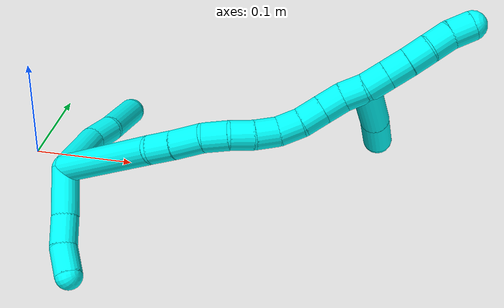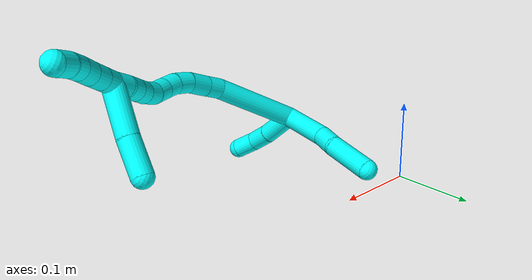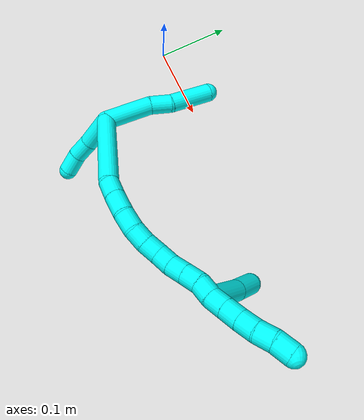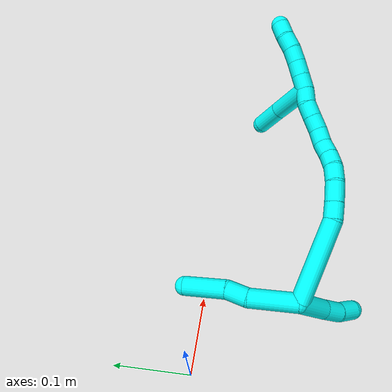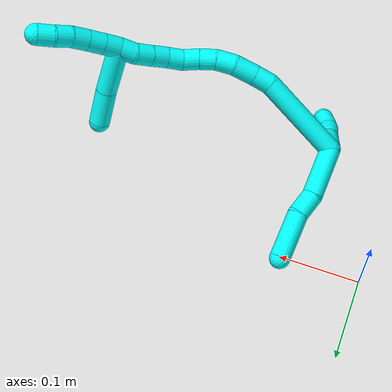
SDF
<sdf version="1.7">
 <world name="default">
  <model name="3">
   <static>0</static>
   <link name="3">
    <collision name="collision-cylinder-e_1_2_8">
     <pose>0.002543 0.031034 -0.006489 -1.77693 0.080024 -0.09846</pose>
     <geometry><cylinder><radius>0.0125</radius><length>0.063613</length></cylinder></geometry>
     <surface>
      <friction><ode><mu>1.16</mu><mu2>1.16</mu2><slip1>0</slip1><slip2>0</slip2></ode></friction>
      <contact><ode><kp>1e+06</kp><kd>1</kd><max_vel>0</max_vel><min_depth>0.001</min_depth></ode></contact>
     </surface>
    </collision>
    <visual name="visual-cylinder-e_1_2_8">
     <pose>0.002543 0.031034 -0.006489 -1.77693 0.080024 -0.09846</pose>
     <geometry><cylinder><radius>0.0125</radius><length>0.063613</length></cylinder></geometry>
     <material><ambient>0.003922 1 0.996078 1</ambient></material>
    </visual>
    <collision name="collision-cylinder-e_2_8_9">
     <pose>0.007805 0.076245 -0.01232 -1.52442 0.189363 -0.180826</pose>
     <geometry><cylinder><radius>0.0125</radius><length>0.028902</length></cylinder></geometry>
     <surface>
      <friction><ode><mu>1.16</mu><mu2>1.16</mu2><slip1>0</slip1><slip2>0</slip2></ode></friction>
      <contact><ode><kp>1e+06</kp><kd>1</kd><max_vel>0</max_vel><min_depth>0.001</min_depth></ode></contact>
     </surface>
    </collision>
    <visual name="visual-cylinder-e_2_8_9">
     <pose>0.007805 0.076245 -0.01232 -1.52442 0.189363 -0.180826</pose>
     <geometry><cylinder><radius>0.0125</radius><length>0.028902</length></cylinder></geometry>
     <material><ambient>0.003922 1 0.996078 1</ambient></material>
    </visual>
    <collision name="collision-cylinder-e_3_9_6">
     <pose>0.01495 0.118082 -0.018102 -1.79954 0.154544 -0.194433</pose>
     <geometry><cylinder><radius>0.0125</radius><length>0.057485</length></cylinder></geometry>
     <surface>
      <friction><ode><mu>1.16</mu><mu2>1.16</mu2><slip1>0</slip1><slip2>0</slip2></ode></friction>
      <contact><ode><kp>1e+06</kp><kd>1</kd><max_vel>0</max_vel><min_depth>0.001</min_depth></ode></contact>
     </surface>
    </collision>
    <visual name="visual-cylinder-e_3_9_6">
     <pose>0.01495 0.118082 -0.018102 -1.79954 0.154544 -0.194433</pose>
     <geometry><cylinder><radius>0.0125</radius><length>0.057485</length></cylinder></geometry>
     <material><ambient>0.003922 1 0.996078 1</ambient></material>
    </visual>
    <collision name="collision-cylinder-e_1_2_10">
     <pose>0.015713 -0.015727 -0.00212 1.70477 0.780451 0.879503</pose>
     <geometry><cylinder><radius>0.0125</radius><length>0.044665</length></cylinder></geometry>
     <surface>
      <friction><ode><mu>1.16</mu><mu2>1.16</mu2><slip1>0</slip1><slip2>0</slip2></ode></friction>
      <contact><ode><kp>1e+06</kp><kd>1</kd><max_vel>0</max_vel><min_depth>0.001</min_depth></ode></contact>
     </surface>
    </collision>
    <visual name="visual-cylinder-e_1_2_10">
     <pose>0.015713 -0.015727 -0.00212 1.70477 0.780451 0.879503</pose>
     <geometry><cylinder><radius>0.0125</radius><length>0.044665</length></cylinder></geometry>
     <material><ambient>0.003922 1 0.996078 1</ambient></material>
    </visual>
    <collision name="collision-cylinder-e_2_10_11">
     <pose>0.040165 -0.042301 -0.004772 1.61986 0.677602 0.708963</pose>
     <geometry><cylinder><radius>0.0125</radius><length>0.02788</length></cylinder></geometry>
     <surface>
      <friction><ode><mu>1.16</mu><mu2>1.16</mu2><slip1>0</slip1><slip2>0</slip2></ode></friction>
      <contact><ode><kp>1e+06</kp><kd>1</kd><max_vel>0</max_vel><min_depth>0.001</min_depth></ode></contact>
     </surface>
    </collision>
    <visual name="visual-cylinder-e_2_10_11">
     <pose>0.040165 -0.042301 -0.004772 1.61986 0.677602 0.708963</pose>
     <geometry><cylinder><radius>0.0125</radius><length>0.02788</length></cylinder></geometry>
     <material><ambient>0.003922 1 0.996078 1</ambient></material>
    </visual>
    <collision name="collision-cylinder-e_3_11_5">
     <pose>0.05831 -0.062818 -0.002759 1.31335 0.754825 0.59309</pose>
     <geometry><cylinder><radius>0.0125</radius><length>0.027455</length></cylinder></geometry>
     <surface>
      <friction><ode><mu>1.16</mu><mu2>1.16</mu2><slip1>0</slip1><slip2>0</slip2></ode></friction>
      <contact><ode><kp>1e+06</kp><kd>1</kd><max_vel>0</max_vel><min_depth>0.001</min_depth></ode></contact>
     </surface>
    </collision>
    <visual name="visual-cylinder-e_3_11_5">
     <pose>0.05831 -0.062818 -0.002759 1.31335 0.754825 0.59309</pose>
     <geometry><cylinder><radius>0.0125</radius><length>0.027455</length></cylinder></geometry>
     <material><ambient>0.003922 1 0.996078 1</ambient></material>
    </visual>
    <collision name="collision-cylinder-e_1_2_12">
     <pose>0.003966 -0.006749 0.053695 0.125033 0.073156 0.004581</pose>
     <geometry><cylinder><radius>0.0125</radius><length>0.108525</length></cylinder></geometry>
     <surface>
      <friction><ode><mu>1.16</mu><mu2>1.16</mu2><slip1>0</slip1><slip2>0</slip2></ode></friction>
      <contact><ode><kp>1e+06</kp><kd>1</kd><max_vel>0</max_vel><min_depth>0.001</min_depth></ode></contact>
     </surface>
    </collision>
    <visual name="visual-cylinder-e_1_2_12">
     <pose>0.003966 -0.006749 0.053695 0.125033 0.073156 0.004581</pose>
     <geometry><cylinder><radius>0.0125</radius><length>0.108525</length></cylinder></geometry>
     <material><ambient>0.003922 1 0.996078 1</ambient></material>
    </visual>
    <collision name="collision-cylinder-e_2_12_13">
     <pose>0.010317 -0.011872 0.118043 -0.151411 0.217757 -0.016582</pose>
     <geometry><cylinder><radius>0.0125</radius><length>0.022075</length></cylinder></geometry>
     <surface>
      <friction><ode><mu>1.16</mu><mu2>1.16</mu2><slip1>0</slip1><slip2>0</slip2></ode></friction>
      <contact><ode><kp>1e+06</kp><kd>1</kd><max_vel>0</max_vel><min_depth>0.001</min_depth></ode></contact>
     </surface>
    </collision>
    <visual name="visual-cylinder-e_2_12_13">
     <pose>0.010317 -0.011872 0.118043 -0.151411 0.217757 -0.016582</pose>
     <geometry><cylinder><radius>0.0125</radius><length>0.022075</length></cylinder></geometry>
     <material><ambient>0.003922 1 0.996078 1</ambient></material>
    </visual>
    <collision name="collision-cylinder-e_3_13_14">
     <pose>0.015345 -0.007554 0.141533 -0.206769 0.198874 -0.020702</pose>
     <geometry><cylinder><radius>0.0125</radius><length>0.026758</length></cylinder></geometry>
     <surface>
      <friction><ode><mu>1.16</mu><mu2>1.16</mu2><slip1>0</slip1><slip2>0</slip2></ode></friction>
      <contact><ode><kp>1e+06</kp><kd>1</kd><max_vel>0</max_vel><min_depth>0.001</min_depth></ode></contact>
     </surface>
    </collision>
    <visual name="visual-cylinder-e_3_13_14">
     <pose>0.015345 -0.007554 0.141533 -0.206769 0.198874 -0.020702</pose>
     <geometry><cylinder><radius>0.0125</radius><length>0.026758</length></cylinder></geometry>
     <material><ambient>0.003922 1 0.996078 1</ambient></material>
    </visual>
    <collision name="collision-cylinder-e_4_14_15">
     <pose>0.022299 -0.001648 0.16397 -0.322957 0.402525 -0.066445</pose>
     <geometry><cylinder><radius>0.0125</radius><length>0.022008</length></cylinder></geometry>
     <surface>
      <friction><ode><mu>1.16</mu><mu2>1.16</mu2><slip1>0</slip1><slip2>0</slip2></ode></friction>
      <contact><ode><kp>1e+06</kp><kd>1</kd><max_vel>0</max_vel><min_depth>0.001</min_depth></ode></contact>
     </surface>
    </collision>
    <visual name="visual-cylinder-e_4_14_15">
     <pose>0.022299 -0.001648 0.16397 -0.322957 0.402525 -0.066445</pose>
     <geometry><cylinder><radius>0.0125</radius><length>0.022008</length></cylinder></geometry>
     <material><ambient>0.003922 1 0.996078 1</ambient></material>
    </visual>
    <collision name="collision-cylinder-e_5_15_16">
     <pose>0.031889 0.005973 0.180858 -0.544043 0.554982 -0.158571</pose>
     <geometry><cylinder><radius>0.0125</radius><length>0.020041</length></cylinder></geometry>
     <surface>
      <friction><ode><mu>1.16</mu><mu2>1.16</mu2><slip1>0</slip1><slip2>0</slip2></ode></friction>
      <contact><ode><kp>1e+06</kp><kd>1</kd><max_vel>0</max_vel><min_depth>0.001</min_depth></ode></contact>
     </surface>
    </collision>
    <visual name="visual-cylinder-e_5_15_16">
     <pose>0.031889 0.005973 0.180858 -0.544043 0.554982 -0.158571</pose>
     <geometry><cylinder><radius>0.0125</radius><length>0.020041</length></cylinder></geometry>
     <material><ambient>0.003922 1 0.996078 1</ambient></material>
    </visual>
    <collision name="collision-cylinder-e_6_16_17">
     <pose>0.041656 0.016125 0.195191 -0.683867 0.458457 -0.16571</pose>
     <geometry><cylinder><radius>0.0125</radius><length>0.020274</length></cylinder></geometry>
     <surface>
      <friction><ode><mu>1.16</mu><mu2>1.16</mu2><slip1>0</slip1><slip2>0</slip2></ode></friction>
      <contact><ode><kp>1e+06</kp><kd>1</kd><max_vel>0</max_vel><min_depth>0.001</min_depth></ode></contact>
     </surface>
    </collision>
    <visual name="visual-cylinder-e_6_16_17">
     <pose>0.041656 0.016125 0.195191 -0.683867 0.458457 -0.16571</pose>
     <geometry><cylinder><radius>0.0125</radius><length>0.020274</length></cylinder></geometry>
     <material><ambient>0.003922 1 0.996078 1</ambient></material>
    </visual>
    <collision name="collision-cylinder-e_7_17_18">
     <pose>0.047967 0.027041 0.210667 -0.550468 0.182498 -0.05167</pose>
     <geometry><cylinder><radius>0.0125</radius><length>0.020116</length></cylinder></geometry>
     <surface>
      <friction><ode><mu>1.16</mu><mu2>1.16</mu2><slip1>0</slip1><slip2>0</slip2></ode></friction>
      <contact><ode><kp>1e+06</kp><kd>1</kd><max_vel>0</max_vel><min_depth>0.001</min_depth></ode></contact>
     </surface>
    </collision>
    <visual name="visual-cylinder-e_7_17_18">
     <pose>0.047967 0.027041 0.210667 -0.550468 0.182498 -0.05167</pose>
     <geometry><cylinder><radius>0.0125</radius><length>0.020116</length></cylinder></geometry>
     <material><ambient>0.003922 1 0.996078 1</ambient></material>
    </visual>
    <collision name="collision-cylinder-e_8_18_19">
     <pose>0.050032 0.038306 0.227081 -0.651675 0.023779 -0.008035</pose>
     <geometry><cylinder><radius>0.0125</radius><length>0.02009</length></cylinder></geometry>
     <surface>
      <friction><ode><mu>1.16</mu><mu2>1.16</mu2><slip1>0</slip1><slip2>0</slip2></ode></friction>
      <contact><ode><kp>1e+06</kp><kd>1</kd><max_vel>0</max_vel><min_depth>0.001</min_depth></ode></contact>
     </surface>
    </collision>
    <visual name="visual-cylinder-e_8_18_19">
     <pose>0.050032 0.038306 0.227081 -0.651675 0.023779 -0.008035</pose>
     <geometry><cylinder><radius>0.0125</radius><length>0.02009</length></cylinder></geometry>
     <material><ambient>0.003922 1 0.996078 1</ambient></material>
    </visual>
    <collision name="collision-cylinder-e_9_19_20">
     <pose>0.050542 0.050383 0.243139 -0.637974 0.027045 -0.008933</pose>
     <geometry><cylinder><radius>0.0125</radius><length>0.020109</length></cylinder></geometry>
     <surface>
      <friction><ode><mu>1.16</mu><mu2>1.16</mu2><slip1>0</slip1><slip2>0</slip2></ode></friction>
      <contact><ode><kp>1e+06</kp><kd>1</kd><max_vel>0</max_vel><min_depth>0.001</min_depth></ode></contact>
     </surface>
    </collision>
    <visual name="visual-cylinder-e_9_19_20">
     <pose>0.050542 0.050383 0.243139 -0.637974 0.027045 -0.008933</pose>
     <geometry><cylinder><radius>0.0125</radius><length>0.020109</length></cylinder></geometry>
     <material><ambient>0.003922 1 0.996078 1</ambient></material>
    </visual>
    <collision name="collision-cylinder-e_10_20_1">
     <pose>0.052054 0.059905 0.260487 -0.364308 0.124279 -0.02292</pose>
     <geometry><cylinder><radius>0.0125</radius><length>0.020004</length></cylinder></geometry>
     <surface>
      <friction><ode><mu>1.16</mu><mu2>1.16</mu2><slip1>0</slip1><slip2>0</slip2></ode></friction>
      <contact><ode><kp>1e+06</kp><kd>1</kd><max_vel>0</max_vel><min_depth>0.001</min_depth></ode></contact>
     </surface>
    </collision>
    <visual name="visual-cylinder-e_10_20_1">
     <pose>0.052054 0.059905 0.260487 -0.364308 0.124279 -0.02292</pose>
     <geometry><cylinder><radius>0.0125</radius><length>0.020004</length></cylinder></geometry>
     <material><ambient>0.003922 1 0.996078 1</ambient></material>
    </visual>
    <collision name="collision-cylinder-e_1_1_21">
     <pose>0.074102 0.078734 0.256663 -2.27902 0.801848 -1.48873</pose>
     <geometry><cylinder><radius>0.0125</radius><length>0.057909</length></cylinder></geometry>
     <surface>
      <friction><ode><mu>1.16</mu><mu2>1.16</mu2><slip1>0</slip1><slip2>0</slip2></ode></friction>
      <contact><ode><kp>1e+06</kp><kd>1</kd><max_vel>0</max_vel><min_depth>0.001</min_depth></ode></contact>
     </surface>
    </collision>
    <visual name="visual-cylinder-e_1_1_21">
     <pose>0.074102 0.078734 0.256663 -2.27902 0.801848 -1.48873</pose>
     <geometry><cylinder><radius>0.0125</radius><length>0.057909</length></cylinder></geometry>
     <material><ambient>0.003922 1 0.996078 1</ambient></material>
    </visual>
    <collision name="collision-cylinder-e_2_21_4">
     <pose>0.109075 0.105385 0.232924 -2.32362 0.73837 -1.45755</pose>
     <geometry><cylinder><radius>0.0125</radius><length>0.042091</length></cylinder></geometry>
     <surface>
      <friction><ode><mu>1.16</mu><mu2>1.16</mu2><slip1>0</slip1><slip2>0</slip2></ode></friction>
      <contact><ode><kp>1e+06</kp><kd>1</kd><max_vel>0</max_vel><min_depth>0.001</min_depth></ode></contact>
     </surface>
    </collision>
    <visual name="visual-cylinder-e_2_21_4">
     <pose>0.109075 0.105385 0.232924 -2.32362 0.73837 -1.45755</pose>
     <geometry><cylinder><radius>0.0125</radius><length>0.042091</length></cylinder></geometry>
     <material><ambient>0.003922 1 0.996078 1</ambient></material>
    </visual>
    <collision name="collision-cylinder-e_1_1_22">
     <pose>0.053232 0.068626 0.278311 -0.545103 -0.006156 0.001721</pose>
     <geometry><cylinder><radius>0.0125</radius><length>0.02</length></cylinder></geometry>
     <surface>
      <friction><ode><mu>1.16</mu><mu2>1.16</mu2><slip1>0</slip1><slip2>0</slip2></ode></friction>
      <contact><ode><kp>1e+06</kp><kd>1</kd><max_vel>0</max_vel><min_depth>0.001</min_depth></ode></contact>
     </surface>
    </collision>
    <visual name="visual-cylinder-e_1_1_22">
     <pose>0.053232 0.068626 0.278311 -0.545103 -0.006156 0.001721</pose>
     <geometry><cylinder><radius>0.0125</radius><length>0.02</length></cylinder></geometry>
     <material><ambient>0.003922 1 0.996078 1</ambient></material>
    </visual>
    <collision name="collision-cylinder-e_2_22_23">
     <pose>0.053125 0.079007 0.295405 -0.546338 -0.004553 0.001276</pose>
     <geometry><cylinder><radius>0.0125</radius><length>0.02</length></cylinder></geometry>
     <surface>
      <friction><ode><mu>1.16</mu><mu2>1.16</mu2><slip1>0</slip1><slip2>0</slip2></ode></friction>
      <contact><ode><kp>1e+06</kp><kd>1</kd><max_vel>0</max_vel><min_depth>0.001</min_depth></ode></contact>
     </surface>
    </collision>
    <visual name="visual-cylinder-e_2_22_23">
     <pose>0.053125 0.079007 0.295405 -0.546338 -0.004553 0.001276</pose>
     <geometry><cylinder><radius>0.0125</radius><length>0.02</length></cylinder></geometry>
     <material><ambient>0.003922 1 0.996078 1</ambient></material>
    </visual>
    <collision name="collision-cylinder-e_3_23_24">
     <pose>0.052809 0.089732 0.312277 -0.586119 -0.0271 0.008178</pose>
     <geometry><cylinder><radius>0.0125</radius><length>0.02</length></cylinder></geometry>
     <surface>
      <friction><ode><mu>1.16</mu><mu2>1.16</mu2><slip1>0</slip1><slip2>0</slip2></ode></friction>
      <contact><ode><kp>1e+06</kp><kd>1</kd><max_vel>0</max_vel><min_depth>0.001</min_depth></ode></contact>
     </surface>
    </collision>
    <visual name="visual-cylinder-e_3_23_24">
     <pose>0.052809 0.089732 0.312277 -0.586119 -0.0271 0.008178</pose>
     <geometry><cylinder><radius>0.0125</radius><length>0.02</length></cylinder></geometry>
     <material><ambient>0.003922 1 0.996078 1</ambient></material>
    </visual>
    <collision name="collision-cylinder-e_4_24_25">
     <pose>0.052744 0.101975 0.328013 -0.73635 0.020656 -0.007969</pose>
     <geometry><cylinder><radius>0.0125</radius><length>0.02</length></cylinder></geometry>
     <surface>
      <friction><ode><mu>1.16</mu><mu2>1.16</mu2><slip1>0</slip1><slip2>0</slip2></ode></friction>
      <contact><ode><kp>1e+06</kp><kd>1</kd><max_vel>0</max_vel><min_depth>0.001</min_depth></ode></contact>
     </surface>
    </collision>
    <visual name="visual-cylinder-e_4_24_25">
     <pose>0.052744 0.101975 0.328013 -0.73635 0.020656 -0.007969</pose>
     <geometry><cylinder><radius>0.0125</radius><length>0.02</length></cylinder></geometry>
     <material><ambient>0.003922 1 0.996078 1</ambient></material>
    </visual>
    <collision name="collision-cylinder-e_5_25_3">
     <pose>0.054741 0.114429 0.343412 -0.622832 0.179979 -0.058074</pose>
     <geometry><cylinder><radius>0.0125</radius><length>0.02</length></cylinder></geometry>
     <surface>
      <friction><ode><mu>1.16</mu><mu2>1.16</mu2><slip1>0</slip1><slip2>0</slip2></ode></friction>
      <contact><ode><kp>1e+06</kp><kd>1</kd><max_vel>0</max_vel><min_depth>0.001</min_depth></ode></contact>
     </surface>
    </collision>
    <visual name="visual-cylinder-e_5_25_3">
     <pose>0.054741 0.114429 0.343412 -0.622832 0.179979 -0.058074</pose>
     <geometry><cylinder><radius>0.0125</radius><length>0.02</length></cylinder></geometry>
     <material><ambient>0.003922 1 0.996078 1</ambient></material>
    </visual>
    <collision name="collision-sphere-3">
     <pose>0.056531 0.120168 0.351403 0 -0 0</pose>
     <geometry><sphere><radius>0.0125</radius></sphere></geometry>
     <surface>
      <friction><ode><mu>1.16</mu><mu2>1.16</mu2><slip1>0</slip1><slip2>0</slip2></ode></friction>
      <contact><ode><kp>1e+06</kp><kd>1</kd><max_vel>0</max_vel><min_depth>0.001</min_depth></ode></contact>
     </surface>
    </collision>
    <visual name="visual-sphere-3">
     <pose>0.056531 0.120168 0.351403 0 -0 0</pose>
     <geometry><sphere><radius>0.0125</radius></sphere></geometry>
     <material><ambient>0.003922 1 0.996078 1</ambient></material>
    </visual>
    <collision name="collision-sphere-25">
     <pose>0.052951 0.10869 0.335421 0 -0 0</pose>
     <geometry><sphere><radius>0.0125</radius></sphere></geometry>
     <surface>
      <friction><ode><mu>1.16</mu><mu2>1.16</mu2><slip1>0</slip1><slip2>0</slip2></ode></friction>
      <contact><ode><kp>1e+06</kp><kd>1</kd><max_vel>0</max_vel><min_depth>0.001</min_depth></ode></contact>
     </surface>
    </collision>
    <visual name="visual-sphere-25">
     <pose>0.052951 0.10869 0.335421 0 -0 0</pose>
     <geometry><sphere><radius>0.0125</radius></sphere></geometry>
     <material><ambient>0.003922 1 0.996078 1</ambient></material>
    </visual>
    <collision name="collision-sphere-24">
     <pose>0.052538 0.095261 0.320605 0 -0 0</pose>
     <geometry><sphere><radius>0.0125</radius></sphere></geometry>
     <surface>
      <friction><ode><mu>1.16</mu><mu2>1.16</mu2><slip1>0</slip1><slip2>0</slip2></ode></friction>
      <contact><ode><kp>1e+06</kp><kd>1</kd><max_vel>0</max_vel><min_depth>0.001</min_depth></ode></contact>
     </surface>
    </collision>
    <visual name="visual-sphere-24">
     <pose>0.052538 0.095261 0.320605 0 -0 0</pose>
     <geometry><sphere><radius>0.0125</radius></sphere></geometry>
     <material><ambient>0.003922 1 0.996078 1</ambient></material>
    </visual>
    <collision name="collision-sphere-23">
     <pose>0.05308 0.084202 0.30395 0 -0 0</pose>
     <geometry><sphere><radius>0.0125</radius></sphere></geometry>
     <surface>
      <friction><ode><mu>1.16</mu><mu2>1.16</mu2><slip1>0</slip1><slip2>0</slip2></ode></friction>
      <contact><ode><kp>1e+06</kp><kd>1</kd><max_vel>0</max_vel><min_depth>0.001</min_depth></ode></contact>
     </surface>
    </collision>
    <visual name="visual-sphere-23">
     <pose>0.05308 0.084202 0.30395 0 -0 0</pose>
     <geometry><sphere><radius>0.0125</radius></sphere></geometry>
     <material><ambient>0.003922 1 0.996078 1</ambient></material>
    </visual>
    <collision name="collision-sphere-22">
     <pose>0.053171 0.073811 0.286861 0 -0 0</pose>
     <geometry><sphere><radius>0.0125</radius></sphere></geometry>
     <surface>
      <friction><ode><mu>1.16</mu><mu2>1.16</mu2><slip1>0</slip1><slip2>0</slip2></ode></friction>
      <contact><ode><kp>1e+06</kp><kd>1</kd><max_vel>0</max_vel><min_depth>0.001</min_depth></ode></contact>
     </surface>
    </collision>
    <visual name="visual-sphere-22">
     <pose>0.053171 0.073811 0.286861 0 -0 0</pose>
     <geometry><sphere><radius>0.0125</radius></sphere></geometry>
     <material><ambient>0.003922 1 0.996078 1</ambient></material>
    </visual>
    <collision name="collision-sphere-4">
     <pose>0.123241 0.116743 0.222283 0 -0 0</pose>
     <geometry><sphere><radius>0.0125</radius></sphere></geometry>
     <surface>
      <friction><ode><mu>1.16</mu><mu2>1.16</mu2><slip1>0</slip1><slip2>0</slip2></ode></friction>
      <contact><ode><kp>1e+06</kp><kd>1</kd><max_vel>0</max_vel><min_depth>0.001</min_depth></ode></contact>
     </surface>
    </collision>
    <visual name="visual-sphere-4">
     <pose>0.123241 0.116743 0.222283 0 -0 0</pose>
     <geometry><sphere><radius>0.0125</radius></sphere></geometry>
     <material><ambient>0.003922 1 0.996078 1</ambient></material>
    </visual>
    <collision name="collision-sphere-21">
     <pose>0.09491 0.094026 0.243566 0 -0 0</pose>
     <geometry><sphere><radius>0.0125</radius></sphere></geometry>
     <surface>
      <friction><ode><mu>1.16</mu><mu2>1.16</mu2><slip1>0</slip1><slip2>0</slip2></ode></friction>
      <contact><ode><kp>1e+06</kp><kd>1</kd><max_vel>0</max_vel><min_depth>0.001</min_depth></ode></contact>
     </surface>
    </collision>
    <visual name="visual-sphere-21">
     <pose>0.09491 0.094026 0.243566 0 -0 0</pose>
     <geometry><sphere><radius>0.0125</radius></sphere></geometry>
     <material><ambient>0.003922 1 0.996078 1</ambient></material>
    </visual>
    <collision name="collision-sphere-1">
     <pose>0.053294 0.063441 0.26976 0 -0 0</pose>
     <geometry><sphere><radius>0.0125</radius></sphere></geometry>
     <surface>
      <friction><ode><mu>1.16</mu><mu2>1.16</mu2><slip1>0</slip1><slip2>0</slip2></ode></friction>
      <contact><ode><kp>1e+06</kp><kd>1</kd><max_vel>0</max_vel><min_depth>0.001</min_depth></ode></contact>
     </surface>
    </collision>
    <visual name="visual-sphere-1">
     <pose>0.053294 0.063441 0.26976 0 -0 0</pose>
     <geometry><sphere><radius>0.0125</radius></sphere></geometry>
     <material><ambient>0.003922 1 0.996078 1</ambient></material>
    </visual>
    <collision name="collision-sphere-11">
     <pose>0.048905 -0.053149 -0.005305 0 -0 0</pose>
     <geometry><sphere><radius>0.0125</radius></sphere></geometry>
     <surface>
      <friction><ode><mu>1.16</mu><mu2>1.16</mu2><slip1>0</slip1><slip2>0</slip2></ode></friction>
      <contact><ode><kp>1e+06</kp><kd>1</kd><max_vel>0</max_vel><min_depth>0.001</min_depth></ode></contact>
     </surface>
    </collision>
    <visual name="visual-sphere-11">
     <pose>0.048905 -0.053149 -0.005305 0 -0 0</pose>
     <geometry><sphere><radius>0.0125</radius></sphere></geometry>
     <material><ambient>0.003922 1 0.996078 1</ambient></material>
    </visual>
    <collision name="collision-sphere-10">
     <pose>0.031426 -0.031454 -0.00424 0 -0 0</pose>
     <geometry><sphere><radius>0.0125</radius></sphere></geometry>
     <surface>
      <friction><ode><mu>1.16</mu><mu2>1.16</mu2><slip1>0</slip1><slip2>0</slip2></ode></friction>
      <contact><ode><kp>1e+06</kp><kd>1</kd><max_vel>0</max_vel><min_depth>0.001</min_depth></ode></contact>
     </surface>
    </collision>
    <visual name="visual-sphere-10">
     <pose>0.031426 -0.031454 -0.00424 0 -0 0</pose>
     <geometry><sphere><radius>0.0125</radius></sphere></geometry>
     <material><ambient>0.003922 1 0.996078 1</ambient></material>
    </visual>
    <collision name="collision-sphere-6">
     <pose>0.019374 0.145742 -0.024542 0 -0 0</pose>
     <geometry><sphere><radius>0.0125</radius></sphere></geometry>
     <surface>
      <friction><ode><mu>1.16</mu><mu2>1.16</mu2><slip1>0</slip1><slip2>0</slip2></ode></friction>
      <contact><ode><kp>1e+06</kp><kd>1</kd><max_vel>0</max_vel><min_depth>0.001</min_depth></ode></contact>
     </surface>
    </collision>
    <visual name="visual-sphere-6">
     <pose>0.019374 0.145742 -0.024542 0 -0 0</pose>
     <geometry><sphere><radius>0.0125</radius></sphere></geometry>
     <material><ambient>0.003922 1 0.996078 1</ambient></material>
    </visual>
    <collision name="collision-sphere-9">
     <pose>0.010525 0.090422 -0.011662 0 -0 0</pose>
     <geometry><sphere><radius>0.0125</radius></sphere></geometry>
     <surface>
      <friction><ode><mu>1.16</mu><mu2>1.16</mu2><slip1>0</slip1><slip2>0</slip2></ode></friction>
      <contact><ode><kp>1e+06</kp><kd>1</kd><max_vel>0</max_vel><min_depth>0.001</min_depth></ode></contact>
     </surface>
    </collision>
    <visual name="visual-sphere-9">
     <pose>0.010525 0.090422 -0.011662 0 -0 0</pose>
     <geometry><sphere><radius>0.0125</radius></sphere></geometry>
     <material><ambient>0.003922 1 0.996078 1</ambient></material>
    </visual>
    <collision name="collision-sphere-2">
     <geometry><sphere><radius>0.0125</radius></sphere></geometry>
     <surface>
      <friction><ode><mu>1.16</mu><mu2>1.16</mu2><slip1>0</slip1><slip2>0</slip2></ode></friction>
      <contact><ode><kp>1e+06</kp><kd>1</kd><max_vel>0</max_vel><min_depth>0.001</min_depth></ode></contact>
     </surface>
    </collision>
    <visual name="visual-sphere-2">
     <geometry><sphere><radius>0.0125</radius></sphere></geometry>
     <material><ambient>0.003922 1 0.996078 1</ambient></material>
    </visual>
    <collision name="collision-sphere-19">
     <pose>0.05027 0.044397 0.235065 0 -0 0</pose>
     <geometry><sphere><radius>0.0125</radius></sphere></geometry>
     <surface>
      <friction><ode><mu>1.16</mu><mu2>1.16</mu2><slip1>0</slip1><slip2>0</slip2></ode></friction>
      <contact><ode><kp>1e+06</kp><kd>1</kd><max_vel>0</max_vel><min_depth>0.001</min_depth></ode></contact>
     </surface>
    </collision>
    <visual name="visual-sphere-19">
     <pose>0.05027 0.044397 0.235065 0 -0 0</pose>
     <geometry><sphere><radius>0.0125</radius></sphere></geometry>
     <material><ambient>0.003922 1 0.996078 1</ambient></material>
    </visual>
    <collision name="collision-sphere-8">
     <pose>0.005085 0.062067 -0.012978 0 -0 0</pose>
     <geometry><sphere><radius>0.0125</radius></sphere></geometry>
     <surface>
      <friction><ode><mu>1.16</mu><mu2>1.16</mu2><slip1>0</slip1><slip2>0</slip2></ode></friction>
      <contact><ode><kp>1e+06</kp><kd>1</kd><max_vel>0</max_vel><min_depth>0.001</min_depth></ode></contact>
     </surface>
    </collision>
    <visual name="visual-sphere-8">
     <pose>0.005085 0.062067 -0.012978 0 -0 0</pose>
     <geometry><sphere><radius>0.0125</radius></sphere></geometry>
     <material><ambient>0.003922 1 0.996078 1</ambient></material>
    </visual>
    <collision name="collision-sphere-5">
     <pose>0.067716 -0.072488 -0.000213 0 -0 0</pose>
     <geometry><sphere><radius>0.0125</radius></sphere></geometry>
     <surface>
      <friction><ode><mu>1.16</mu><mu2>1.16</mu2><slip1>0</slip1><slip2>0</slip2></ode></friction>
      <contact><ode><kp>1e+06</kp><kd>1</kd><max_vel>0</max_vel><min_depth>0.001</min_depth></ode></contact>
     </surface>
    </collision>
    <visual name="visual-sphere-5">
     <pose>0.067716 -0.072488 -0.000213 0 -0 0</pose>
     <geometry><sphere><radius>0.0125</radius></sphere></geometry>
     <material><ambient>0.003922 1 0.996078 1</ambient></material>
    </visual>
    <collision name="collision-sphere-12">
     <pose>0.007932 -0.013498 0.107389 0 -0 0</pose>
     <geometry><sphere><radius>0.0125</radius></sphere></geometry>
     <surface>
      <friction><ode><mu>1.16</mu><mu2>1.16</mu2><slip1>0</slip1><slip2>0</slip2></ode></friction>
      <contact><ode><kp>1e+06</kp><kd>1</kd><max_vel>0</max_vel><min_depth>0.001</min_depth></ode></contact>
     </surface>
    </collision>
    <visual name="visual-sphere-12">
     <pose>0.007932 -0.013498 0.107389 0 -0 0</pose>
     <geometry><sphere><radius>0.0125</radius></sphere></geometry>
     <material><ambient>0.003922 1 0.996078 1</ambient></material>
    </visual>
    <collision name="collision-sphere-13">
     <pose>0.012701 -0.010247 0.128697 0 -0 0</pose>
     <geometry><sphere><radius>0.0125</radius></sphere></geometry>
     <surface>
      <friction><ode><mu>1.16</mu><mu2>1.16</mu2><slip1>0</slip1><slip2>0</slip2></ode></friction>
      <contact><ode><kp>1e+06</kp><kd>1</kd><max_vel>0</max_vel><min_depth>0.001</min_depth></ode></contact>
     </surface>
    </collision>
    <visual name="visual-sphere-13">
     <pose>0.012701 -0.010247 0.128697 0 -0 0</pose>
     <geometry><sphere><radius>0.0125</radius></sphere></geometry>
     <material><ambient>0.003922 1 0.996078 1</ambient></material>
    </visual>
    <collision name="collision-sphere-14">
     <pose>0.017988 -0.004861 0.154369 0 -0 0</pose>
     <geometry><sphere><radius>0.0125</radius></sphere></geometry>
     <surface>
      <friction><ode><mu>1.16</mu><mu2>1.16</mu2><slip1>0</slip1><slip2>0</slip2></ode></friction>
      <contact><ode><kp>1e+06</kp><kd>1</kd><max_vel>0</max_vel><min_depth>0.001</min_depth></ode></contact>
     </surface>
    </collision>
    <visual name="visual-sphere-14">
     <pose>0.017988 -0.004861 0.154369 0 -0 0</pose>
     <geometry><sphere><radius>0.0125</radius></sphere></geometry>
     <material><ambient>0.003922 1 0.996078 1</ambient></material>
    </visual>
    <collision name="collision-sphere-15">
     <pose>0.026609 0.001565 0.173571 0 -0 0</pose>
     <geometry><sphere><radius>0.0125</radius></sphere></geometry>
     <surface>
      <friction><ode><mu>1.16</mu><mu2>1.16</mu2><slip1>0</slip1><slip2>0</slip2></ode></friction>
      <contact><ode><kp>1e+06</kp><kd>1</kd><max_vel>0</max_vel><min_depth>0.001</min_depth></ode></contact>
     </surface>
    </collision>
    <visual name="visual-sphere-15">
     <pose>0.026609 0.001565 0.173571 0 -0 0</pose>
     <geometry><sphere><radius>0.0125</radius></sphere></geometry>
     <material><ambient>0.003922 1 0.996078 1</ambient></material>
    </visual>
    <collision name="collision-sphere-16">
     <pose>0.03717 0.010382 0.188145 0 -0 0</pose>
     <geometry><sphere><radius>0.0125</radius></sphere></geometry>
     <surface>
      <friction><ode><mu>1.16</mu><mu2>1.16</mu2><slip1>0</slip1><slip2>0</slip2></ode></friction>
      <contact><ode><kp>1e+06</kp><kd>1</kd><max_vel>0</max_vel><min_depth>0.001</min_depth></ode></contact>
     </surface>
    </collision>
    <visual name="visual-sphere-16">
     <pose>0.03717 0.010382 0.188145 0 -0 0</pose>
     <geometry><sphere><radius>0.0125</radius></sphere></geometry>
     <material><ambient>0.003922 1 0.996078 1</ambient></material>
    </visual>
    <collision name="collision-sphere-17">
     <pose>0.046142 0.021868 0.202237 0 -0 0</pose>
     <geometry><sphere><radius>0.0125</radius></sphere></geometry>
     <surface>
      <friction><ode><mu>1.16</mu><mu2>1.16</mu2><slip1>0</slip1><slip2>0</slip2></ode></friction>
      <contact><ode><kp>1e+06</kp><kd>1</kd><max_vel>0</max_vel><min_depth>0.001</min_depth></ode></contact>
     </surface>
    </collision>
    <visual name="visual-sphere-17">
     <pose>0.046142 0.021868 0.202237 0 -0 0</pose>
     <geometry><sphere><radius>0.0125</radius></sphere></geometry>
     <material><ambient>0.003922 1 0.996078 1</ambient></material>
    </visual>
    <collision name="collision-sphere-18">
     <pose>0.049793 0.032215 0.219097 0 -0 0</pose>
     <geometry><sphere><radius>0.0125</radius></sphere></geometry>
     <surface>
      <friction><ode><mu>1.16</mu><mu2>1.16</mu2><slip1>0</slip1><slip2>0</slip2></ode></friction>
      <contact><ode><kp>1e+06</kp><kd>1</kd><max_vel>0</max_vel><min_depth>0.001</min_depth></ode></contact>
     </surface>
    </collision>
    <visual name="visual-sphere-18">
     <pose>0.049793 0.032215 0.219097 0 -0 0</pose>
     <geometry><sphere><radius>0.0125</radius></sphere></geometry>
     <material><ambient>0.003922 1 0.996078 1</ambient></material>
    </visual>
    <collision name="collision-sphere-20">
     <pose>0.050814 0.056369 0.251213 0 -0 0</pose>
     <geometry><sphere><radius>0.0125</radius></sphere></geometry>
     <surface>
      <friction><ode><mu>1.16</mu><mu2>1.16</mu2><slip1>0</slip1><slip2>0</slip2></ode></friction>
      <contact><ode><kp>1e+06</kp><kd>1</kd><max_vel>0</max_vel><min_depth>0.001</min_depth></ode></contact>
     </surface>
    </collision>
    <visual name="visual-sphere-20">
     <pose>0.050814 0.056369 0.251213 0 -0 0</pose>
     <geometry><sphere><radius>0.0125</radius></sphere></geometry>
     <material><ambient>0.003922 1 0.996078 1</ambient></material>
    </visual>
    <inertial>
     <pose>0.034607 0.037558 0.128017 0 -0 0</pose>
     <mass>0.75</mass>
     <inertia>
      <ixx>0.000185</ixx>
      <ixy>0</ixy>
      <ixz>0</ixz>
      <iyy>0.000142</iyy>
      <iyz>0</iyz>
      <izz>-6.7e-05</izz>
     </inertia>
    </inertial>
   </link>
   <pose>0.080822 -0.124089 0.071083 0.073132 0.988659 -0.112255</pose>
  </model>
 </world>
</sdf>
